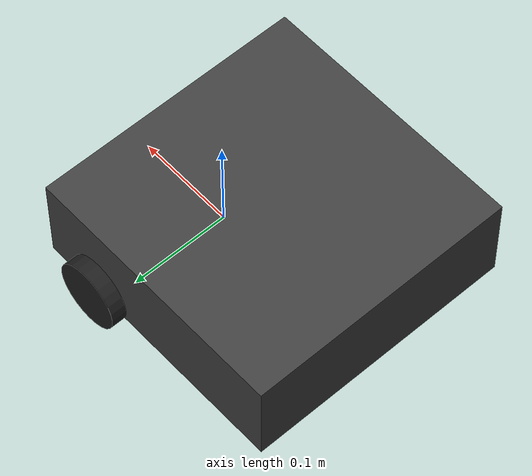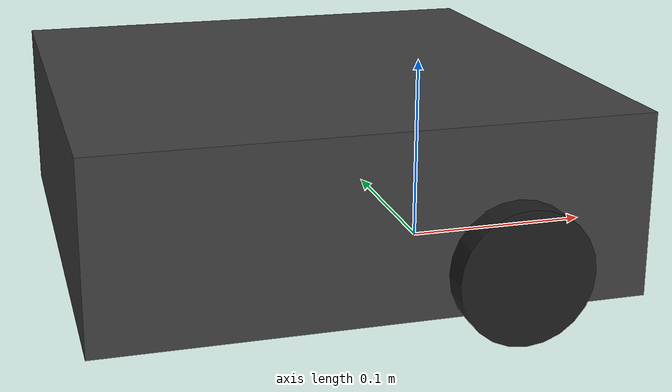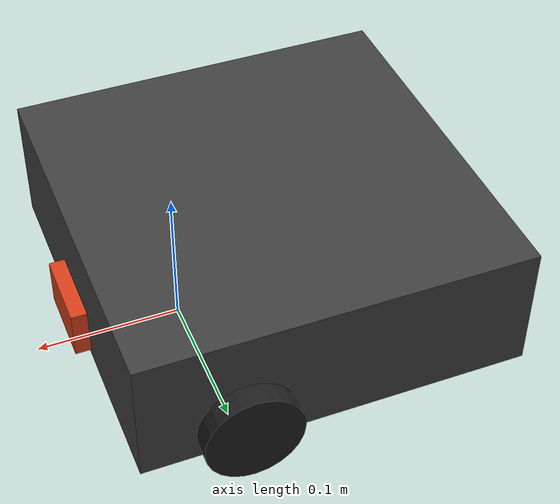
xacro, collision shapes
<?xml version="1.0"?>
<robot name="tb3_waffle_pi_lowlidar" xmlns:xacro="http://www.ros.org/wiki/xacro">

  <!-- 메시 폴더: ROS는 기본값 그대로 · Isaac은 isaac/urdf/beebot/meshes 를 넘김 (robot_spec.py) -->
  <xacro:arg name="mesh_uri" default="package://tb3_bringup/meshes"/>

  <!-- LDS-03 라이다. base_scan = 스캔 평면 중심 = coin_d4_driver frame_id -->
  <xacro:property name="lidar_x" value="0.060"/>           <!-- 측정: 라이다 중심 — 바퀴축(0)보다 앞, 판 앞끝(0.069) 근처 -->
  <xacro:property name="lidar_y" value="0.0"/>
  <xacro:property name="lidar_z" value="0.022"/>           <!-- 측정: 스캔 평면 높이 (1층 판 위, 2층 판 아래) -->
  <xacro:property name="lidar_yaw" value="0.0"/>           <!-- 측정: 라이다 0°가 로봇 앞과 다르면 (rad) -->
  <xacro:property name="lidar_w" value="0.0547"/>          <!-- LDS-03 e-Manual 54.7 W × 39.7 D × 34 H mm -->
  <xacro:property name="lidar_d" value="0.0397"/>
  <xacro:property name="lidar_h" value="0.034"/>

  <material name="body"><color rgba="0.25 0.25 0.25 1"/></material>
  <material name="dark"><color rgba="0.12 0.12 0.12 1"/></material>
  <material name="lidar"><color rgba="0.85 0.25 0.1 1"/></material>

  <link name="base_footprint"/>
  <joint name="base_joint" type="fixed">
    <parent link="base_footprint"/><child link="base_link"/>
    <origin xyz="0 0 0.010"/>
  </joint>

  <link name="base_link">
    <visual>
      <geometry><mesh filename="$(arg mesh_uri)/body.stl" scale="0.001 0.001 0.001"/></geometry>
      <material name="body"/>
    </visual>
    <!-- 1층~2층 + 지지봉 (판 266×266mm, 중심 x -0.064) -->
    <collision>
      <origin xyz="-0.064 0 0.0455"/>
      <geometry><box size="0.266 0.266 0.091"/></geometry>
    </collision>
    <!-- 근사: Waffle Pi 1.8 kg에서 위판 뺀 몸체 (배터리·모터·보드·라이다). Isaac 학습용 — 바꾸면 isaac 재학습 -->
    <inertial>
      <origin xyz="-0.064 0 0.030"/>
      <mass value="1.4"/>
      <inertia ixx="0.0090" ixy="0" ixz="0" iyy="0.0090" iyz="0" izz="0.0165"/>
    </inertial>
  </link>

  <!-- 바퀴 (beebot CAD 위치·메시). +회전 = 앞으로 -->
  <xacro:macro name="wheel" params="side y">
    <joint name="wheel_${side}_joint" type="continuous">
      <parent link="base_link"/><child link="wheel_${side}_link"/>
      <origin xyz="0 ${y} 0.023"/>
      <axis xyz="0 1 0"/>
    </joint>
    <link name="wheel_${side}_link">
      <visual>
        <geometry><mesh filename="$(arg mesh_uri)/wheel_${side}.stl" scale="0.001 0.001 0.001"/></geometry>
        <material name="dark"/>
      </visual>
      <collision>
        <origin rpy="1.5708 0 0"/>
        <geometry><cylinder length="0.015" radius="0.033"/></geometry>
      </collision>
      <inertial>
        <mass value="0.0285"/>
        <inertia ixx="1.1e-05" ixy="0" ixz="0" iyy="2.05e-05" iyz="0" izz="1.1e-05"/>
      </inertial>
    </link>
  </xacro:macro>
  <xacro:wheel side="left" y="0.1439"/>
  <xacro:wheel side="right" y="-0.1439"/>

  <!-- 볼 캐스터 (모양은 body.stl에 있음 · 여기는 접지 구만). Isaac은 'caster' 충돌체에 마찰 0을 붙인다 (볼이 굴러감) -->
  <xacro:macro name="caster" params="side y">
    <joint name="caster_back_${side}_joint" type="fixed">
      <parent link="base_link"/><child link="caster_back_${side}_link"/>
      <origin xyz="-0.177 ${y} -0.005237"/>
    </joint>
    <link name="caster_back_${side}_link">
      <collision><geometry><sphere radius="0.004763"/></geometry></collision>
      <!-- 센서(IMU/RayCaster) rigid body view가 zero-mass 링크에서 깨지지 않게 작은 관성 추가.
           실제 캐스터 볼+마운트 ~5 g, 구 관성 2/5·m·r² ≈ 9e-8 -->
      <inertial>
        <mass value="0.005"/>
        <inertia ixx="1e-7" ixy="0" ixz="0" iyy="1e-7" iyz="0" izz="1e-7"/>
      </inertial>
    </link>
  </xacro:macro>
  <xacro:caster side="left" y="0.064"/>
  <xacro:caster side="right" y="-0.064"/>

  <!-- OpenCR 내장 IMU (beebot 실측: 보드 윗면). 축은 base_link와 같다고 가정 — 왼쪽 회전에 gz > 0 확인 -->
  <joint name="imu_joint" type="fixed">
    <parent link="base_link"/><child link="imu_link"/>
    <origin xyz="0.0178 0 0.0585"/>
  </joint>
  <link name="imu_link"/>

  <joint name="scan_joint" type="fixed">
    <parent link="base_link"/><child link="base_scan"/>
    <origin xyz="${lidar_x} ${lidar_y} ${lidar_z}" rpy="0 0 ${lidar_yaw}"/>
  </joint>
  <link name="base_scan">
    <!-- LDS-03 외형 (상자로 근사, 스캔 평면이 높이 중앙이라고 가정) -->
    <visual>
      <geometry><box size="${lidar_d} ${lidar_w} ${lidar_h}"/></geometry>
      <material name="lidar"/>
    </visual>
    <collision>
      <geometry><box size="${lidar_d} ${lidar_w} ${lidar_h}"/></geometry>
    </collision>
  </link>
</robot>
